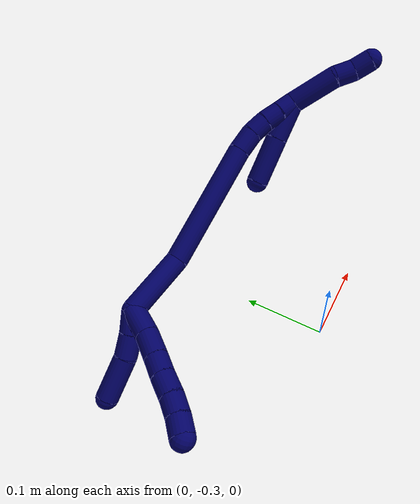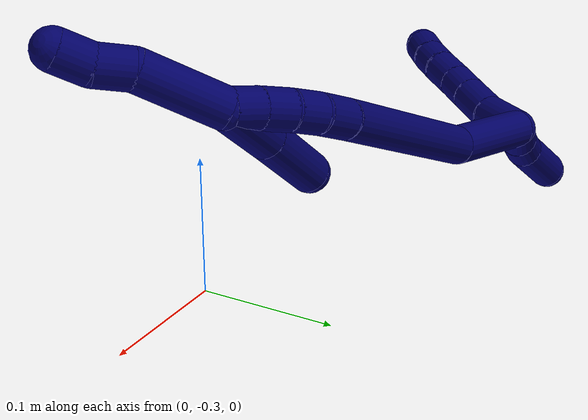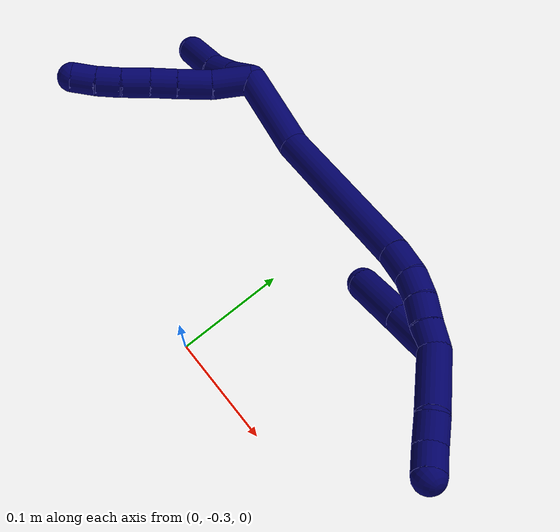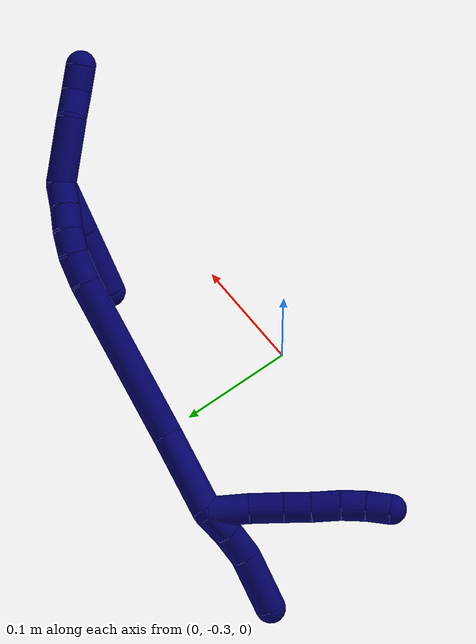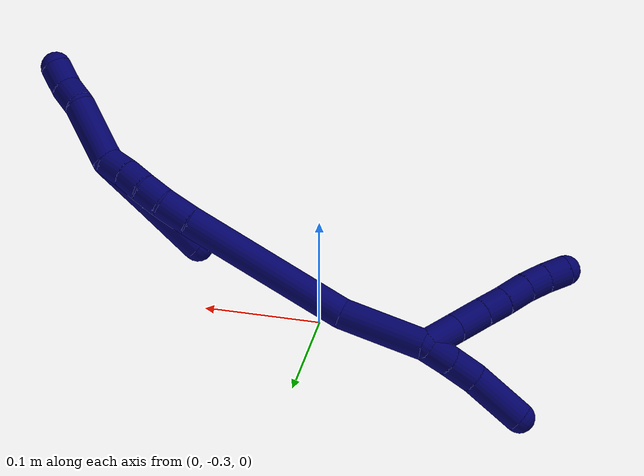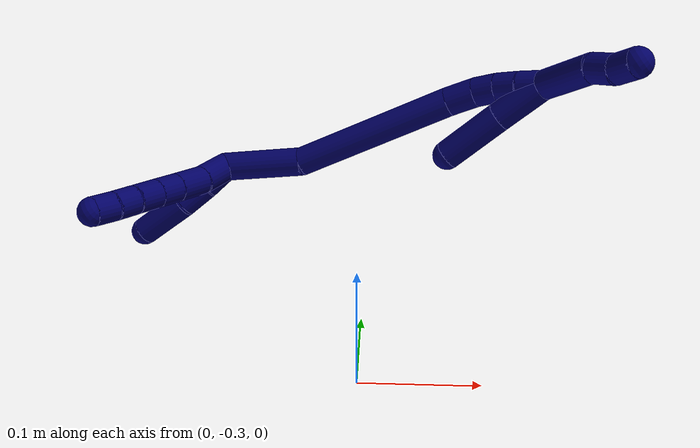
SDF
<sdf version="1.7">
 <world name="default">
  <model name="7">
   <static>0</static>
   <link name="7">
    <collision name="collision-cylinder-e_1_2_8">
     <pose>0.001225 -0.015391 -0.006543 1.97274 0.073114 0.110462</pose>
     <geometry><cylinder><radius>0.0125</radius><length>0.033538</length></cylinder></geometry>
     <surface>
      <friction><ode><mu>1.16</mu><mu2>1.16</mu2><slip1>0</slip1><slip2>0</slip2></ode></friction>
      <contact><ode><kp>1e+06</kp><kd>1</kd><max_vel>0</max_vel><min_depth>0.001</min_depth></ode></contact>
     </surface>
    </collision>
    <visual name="visual-cylinder-e_1_2_8">
     <pose>0.001225 -0.015391 -0.006543 1.97274 0.073114 0.110462</pose>
     <geometry><cylinder><radius>0.0125</radius><length>0.033538</length></cylinder></geometry>
     <material><ambient>0.003922 0 0.403922 1</ambient></material>
    </visual>
    <collision name="collision-cylinder-e_2_8_9">
     <pose>0.001095 -0.044173 -0.018859 1.97788 -0.09266 -0.140726</pose>
     <geometry><cylinder><radius>0.0125</radius><length>0.02929</length></cylinder></geometry>
     <surface>
      <friction><ode><mu>1.16</mu><mu2>1.16</mu2><slip1>0</slip1><slip2>0</slip2></ode></friction>
      <contact><ode><kp>1e+06</kp><kd>1</kd><max_vel>0</max_vel><min_depth>0.001</min_depth></ode></contact>
     </surface>
    </collision>
    <visual name="visual-cylinder-e_2_8_9">
     <pose>0.001095 -0.044173 -0.018859 1.97788 -0.09266 -0.140726</pose>
     <geometry><cylinder><radius>0.0125</radius><length>0.02929</length></cylinder></geometry>
     <material><ambient>0.003922 0 0.403922 1</ambient></material>
    </visual>
    <collision name="collision-cylinder-e_3_9_10">
     <pose>-0.001444 -0.067711 -0.029175 1.99172 -0.106094 -0.163525</pose>
     <geometry><cylinder><radius>0.0125</radius><length>0.022363</length></cylinder></geometry>
     <surface>
      <friction><ode><mu>1.16</mu><mu2>1.16</mu2><slip1>0</slip1><slip2>0</slip2></ode></friction>
      <contact><ode><kp>1e+06</kp><kd>1</kd><max_vel>0</max_vel><min_depth>0.001</min_depth></ode></contact>
     </surface>
    </collision>
    <visual name="visual-cylinder-e_3_9_10">
     <pose>-0.001444 -0.067711 -0.029175 1.99172 -0.106094 -0.163525</pose>
     <geometry><cylinder><radius>0.0125</radius><length>0.022363</length></cylinder></geometry>
     <material><ambient>0.003922 0 0.403922 1</ambient></material>
    </visual>
    <collision name="collision-cylinder-e_4_10_11">
     <pose>-0.003649 -0.08895 -0.03808 1.94547 -0.085403 -0.125267</pose>
     <geometry><cylinder><radius>0.0125</radius><length>0.023923</length></cylinder></geometry>
     <surface>
      <friction><ode><mu>1.16</mu><mu2>1.16</mu2><slip1>0</slip1><slip2>0</slip2></ode></friction>
      <contact><ode><kp>1e+06</kp><kd>1</kd><max_vel>0</max_vel><min_depth>0.001</min_depth></ode></contact>
     </surface>
    </collision>
    <visual name="visual-cylinder-e_4_10_11">
     <pose>-0.003649 -0.08895 -0.03808 1.94547 -0.085403 -0.125267</pose>
     <geometry><cylinder><radius>0.0125</radius><length>0.023923</length></cylinder></geometry>
     <material><ambient>0.003922 0 0.403922 1</ambient></material>
    </visual>
    <collision name="collision-cylinder-e_5_11_12">
     <pose>-0.00579 -0.109166 -0.047048 2.03835 -0.109281 -0.177306</pose>
     <geometry><cylinder><radius>0.0125</radius><length>0.020566</length></cylinder></geometry>
     <surface>
      <friction><ode><mu>1.16</mu><mu2>1.16</mu2><slip1>0</slip1><slip2>0</slip2></ode></friction>
      <contact><ode><kp>1e+06</kp><kd>1</kd><max_vel>0</max_vel><min_depth>0.001</min_depth></ode></contact>
     </surface>
    </collision>
    <visual name="visual-cylinder-e_5_11_12">
     <pose>-0.00579 -0.109166 -0.047048 2.03835 -0.109281 -0.177306</pose>
     <geometry><cylinder><radius>0.0125</radius><length>0.020566</length></cylinder></geometry>
     <material><ambient>0.003922 0 0.403922 1</ambient></material>
    </visual>
    <collision name="collision-cylinder-e_6_12_6">
     <pose>-0.008682 -0.126817 -0.056889 2.12128 -0.175152 -0.311278</pose>
     <geometry><cylinder><radius>0.0125</radius><length>0.020321</length></cylinder></geometry>
     <surface>
      <friction><ode><mu>1.16</mu><mu2>1.16</mu2><slip1>0</slip1><slip2>0</slip2></ode></friction>
      <contact><ode><kp>1e+06</kp><kd>1</kd><max_vel>0</max_vel><min_depth>0.001</min_depth></ode></contact>
     </surface>
    </collision>
    <visual name="visual-cylinder-e_6_12_6">
     <pose>-0.008682 -0.126817 -0.056889 2.12128 -0.175152 -0.311278</pose>
     <geometry><cylinder><radius>0.0125</radius><length>0.020321</length></cylinder></geometry>
     <material><ambient>0.003922 0 0.403922 1</ambient></material>
    </visual>
    <collision name="collision-cylinder-e_1_2_13">
     <pose>0.002087 -0.003026 -0.01183 2.89121 0.169298 1.18644</pose>
     <geometry><cylinder><radius>0.0125</radius><length>0.024776</length></cylinder></geometry>
     <surface>
      <friction><ode><mu>1.16</mu><mu2>1.16</mu2><slip1>0</slip1><slip2>0</slip2></ode></friction>
      <contact><ode><kp>1e+06</kp><kd>1</kd><max_vel>0</max_vel><min_depth>0.001</min_depth></ode></contact>
     </surface>
    </collision>
    <visual name="visual-cylinder-e_1_2_13">
     <pose>0.002087 -0.003026 -0.01183 2.89121 0.169298 1.18644</pose>
     <geometry><cylinder><radius>0.0125</radius><length>0.024776</length></cylinder></geometry>
     <material><ambient>0.003922 0 0.403922 1</ambient></material>
    </visual>
    <collision name="collision-cylinder-e_2_13_14">
     <pose>0.005345 -0.008099 -0.036567 2.98423 0.089311 1.03123</pose>
     <geometry><cylinder><radius>0.0125</radius><length>0.026241</length></cylinder></geometry>
     <surface>
      <friction><ode><mu>1.16</mu><mu2>1.16</mu2><slip1>0</slip1><slip2>0</slip2></ode></friction>
      <contact><ode><kp>1e+06</kp><kd>1</kd><max_vel>0</max_vel><min_depth>0.001</min_depth></ode></contact>
     </surface>
    </collision>
    <visual name="visual-cylinder-e_2_13_14">
     <pose>0.005345 -0.008099 -0.036567 2.98423 0.089311 1.03123</pose>
     <geometry><cylinder><radius>0.0125</radius><length>0.026241</length></cylinder></geometry>
     <material><ambient>0.003922 0 0.403922 1</ambient></material>
    </visual>
    <collision name="collision-cylinder-e_3_14_5">
     <pose>0.006475 -0.009461 -0.073955 -3.11356 -0.001617 0.115224</pose>
     <geometry><cylinder><radius>0.0125</radius><length>0.048983</length></cylinder></geometry>
     <surface>
      <friction><ode><mu>1.16</mu><mu2>1.16</mu2><slip1>0</slip1><slip2>0</slip2></ode></friction>
      <contact><ode><kp>1e+06</kp><kd>1</kd><max_vel>0</max_vel><min_depth>0.001</min_depth></ode></contact>
     </surface>
    </collision>
    <visual name="visual-cylinder-e_3_14_5">
     <pose>0.006475 -0.009461 -0.073955 -3.11356 -0.001617 0.115224</pose>
     <geometry><cylinder><radius>0.0125</radius><length>0.048983</length></cylinder></geometry>
     <material><ambient>0.003922 0 0.403922 1</ambient></material>
    </visual>
    <collision name="collision-cylinder-e_1_2_15">
     <pose>0.017526 0.002189 0.031303 -0.069825 0.509354 -0.018184</pose>
     <geometry><cylinder><radius>0.0125</radius><length>0.071884</length></cylinder></geometry>
     <surface>
      <friction><ode><mu>1.16</mu><mu2>1.16</mu2><slip1>0</slip1><slip2>0</slip2></ode></friction>
      <contact><ode><kp>1e+06</kp><kd>1</kd><max_vel>0</max_vel><min_depth>0.001</min_depth></ode></contact>
     </surface>
    </collision>
    <visual name="visual-cylinder-e_1_2_15">
     <pose>0.017526 0.002189 0.031303 -0.069825 0.509354 -0.018184</pose>
     <geometry><cylinder><radius>0.0125</radius><length>0.071884</length></cylinder></geometry>
     <material><ambient>0.003922 0 0.403922 1</ambient></material>
    </visual>
    <collision name="collision-cylinder-e_2_15_16">
     <pose>0.049673 0.00735 0.132061 -0.042761 0.207302 -0.004449</pose>
     <geometry><cylinder><radius>0.0125</radius><length>0.142078</length></cylinder></geometry>
     <surface>
      <friction><ode><mu>1.16</mu><mu2>1.16</mu2><slip1>0</slip1><slip2>0</slip2></ode></friction>
      <contact><ode><kp>1e+06</kp><kd>1</kd><max_vel>0</max_vel><min_depth>0.001</min_depth></ode></contact>
     </surface>
    </collision>
    <visual name="visual-cylinder-e_2_15_16">
     <pose>0.049673 0.00735 0.132061 -0.042761 0.207302 -0.004449</pose>
     <geometry><cylinder><radius>0.0125</radius><length>0.142078</length></cylinder></geometry>
     <material><ambient>0.003922 0 0.403922 1</ambient></material>
    </visual>
    <collision name="collision-cylinder-e_3_16_17">
     <pose>0.067622 0.009699 0.213768 0.050823 0.264881 0.006772</pose>
     <geometry><cylinder><radius>0.0125</radius><length>0.025425</length></cylinder></geometry>
     <surface>
      <friction><ode><mu>1.16</mu><mu2>1.16</mu2><slip1>0</slip1><slip2>0</slip2></ode></friction>
      <contact><ode><kp>1e+06</kp><kd>1</kd><max_vel>0</max_vel><min_depth>0.001</min_depth></ode></contact>
     </surface>
    </collision>
    <visual name="visual-cylinder-e_3_16_17">
     <pose>0.067622 0.009699 0.213768 0.050823 0.264881 0.006772</pose>
     <geometry><cylinder><radius>0.0125</radius><length>0.025425</length></cylinder></geometry>
     <material><ambient>0.003922 0 0.403922 1</ambient></material>
    </visual>
    <collision name="collision-cylinder-e_4_17_18">
     <pose>0.074811 0.007012 0.235197 0.221178 0.389543 0.043804</pose>
     <geometry><cylinder><radius>0.0125</radius><length>0.020331</length></cylinder></geometry>
     <surface>
      <friction><ode><mu>1.16</mu><mu2>1.16</mu2><slip1>0</slip1><slip2>0</slip2></ode></friction>
      <contact><ode><kp>1e+06</kp><kd>1</kd><max_vel>0</max_vel><min_depth>0.001</min_depth></ode></contact>
     </surface>
    </collision>
    <visual name="visual-cylinder-e_4_17_18">
     <pose>0.074811 0.007012 0.235197 0.221178 0.389543 0.043804</pose>
     <geometry><cylinder><radius>0.0125</radius><length>0.020331</length></cylinder></geometry>
     <material><ambient>0.003922 0 0.403922 1</ambient></material>
    </visual>
    <collision name="collision-cylinder-e_5_18_19">
     <pose>0.083427 0.00197 0.25275 0.341686 0.491101 0.086418</pose>
     <geometry><cylinder><radius>0.0125</radius><length>0.020167</length></cylinder></geometry>
     <surface>
      <friction><ode><mu>1.16</mu><mu2>1.16</mu2><slip1>0</slip1><slip2>0</slip2></ode></friction>
      <contact><ode><kp>1e+06</kp><kd>1</kd><max_vel>0</max_vel><min_depth>0.001</min_depth></ode></contact>
     </surface>
    </collision>
    <visual name="visual-cylinder-e_5_18_19">
     <pose>0.083427 0.00197 0.25275 0.341686 0.491101 0.086418</pose>
     <geometry><cylinder><radius>0.0125</radius><length>0.020167</length></cylinder></geometry>
     <material><ambient>0.003922 0 0.403922 1</ambient></material>
    </visual>
    <collision name="collision-cylinder-e_6_19_1">
     <pose>0.093338 -0.003232 0.269471 0.260337 0.538314 0.072191</pose>
     <geometry><cylinder><radius>0.0125</radius><length>0.020114</length></cylinder></geometry>
     <surface>
      <friction><ode><mu>1.16</mu><mu2>1.16</mu2><slip1>0</slip1><slip2>0</slip2></ode></friction>
      <contact><ode><kp>1e+06</kp><kd>1</kd><max_vel>0</max_vel><min_depth>0.001</min_depth></ode></contact>
     </surface>
    </collision>
    <visual name="visual-cylinder-e_6_19_1">
     <pose>0.093338 -0.003232 0.269471 0.260337 0.538314 0.072191</pose>
     <geometry><cylinder><radius>0.0125</radius><length>0.020114</length></cylinder></geometry>
     <material><ambient>0.003922 0 0.403922 1</ambient></material>
    </visual>
    <collision name="collision-cylinder-e_1_1_20">
     <pose>0.099186 -0.004366 0.255432 -3.093 0.030856 -1.13135</pose>
     <geometry><cylinder><radius>0.0125</radius><length>0.04484</length></cylinder></geometry>
     <surface>
      <friction><ode><mu>1.16</mu><mu2>1.16</mu2><slip1>0</slip1><slip2>0</slip2></ode></friction>
      <contact><ode><kp>1e+06</kp><kd>1</kd><max_vel>0</max_vel><min_depth>0.001</min_depth></ode></contact>
     </surface>
    </collision>
    <visual name="visual-cylinder-e_1_1_20">
     <pose>0.099186 -0.004366 0.255432 -3.093 0.030856 -1.13135</pose>
     <geometry><cylinder><radius>0.0125</radius><length>0.04484</length></cylinder></geometry>
     <material><ambient>0.003922 0 0.403922 1</ambient></material>
    </visual>
    <collision name="collision-cylinder-e_2_20_4">
     <pose>0.101051 -0.00187 0.20553 -3.09047 0.042547 -1.38809</pose>
     <geometry><cylinder><radius>0.0125</radius><length>0.05516</length></cylinder></geometry>
     <surface>
      <friction><ode><mu>1.16</mu><mu2>1.16</mu2><slip1>0</slip1><slip2>0</slip2></ode></friction>
      <contact><ode><kp>1e+06</kp><kd>1</kd><max_vel>0</max_vel><min_depth>0.001</min_depth></ode></contact>
     </surface>
    </collision>
    <visual name="visual-cylinder-e_2_20_4">
     <pose>0.101051 -0.00187 0.20553 -3.09047 0.042547 -1.38809</pose>
     <geometry><cylinder><radius>0.0125</radius><length>0.05516</length></cylinder></geometry>
     <material><ambient>0.003922 0 0.403922 1</ambient></material>
    </visual>
    <collision name="collision-cylinder-e_1_1_21">
     <pose>0.104762 -0.021405 0.299724 0.629285 0.227274 0.074253</pose>
     <geometry><cylinder><radius>0.0125</radius><length>0.055629</length></cylinder></geometry>
     <surface>
      <friction><ode><mu>1.16</mu><mu2>1.16</mu2><slip1>0</slip1><slip2>0</slip2></ode></friction>
      <contact><ode><kp>1e+06</kp><kd>1</kd><max_vel>0</max_vel><min_depth>0.001</min_depth></ode></contact>
     </surface>
    </collision>
    <visual name="visual-cylinder-e_1_1_21">
     <pose>0.104762 -0.021405 0.299724 0.629285 0.227274 0.074253</pose>
     <geometry><cylinder><radius>0.0125</radius><length>0.055629</length></cylinder></geometry>
     <material><ambient>0.003922 0 0.403922 1</ambient></material>
    </visual>
    <collision name="collision-cylinder-e_2_21_22">
     <pose>0.116789 -0.043287 0.329235 0.66264 0.538359 0.189236</pose>
     <geometry><cylinder><radius>0.0125</radius><length>0.022467</length></cylinder></geometry>
     <surface>
      <friction><ode><mu>1.16</mu><mu2>1.16</mu2><slip1>0</slip1><slip2>0</slip2></ode></friction>
      <contact><ode><kp>1e+06</kp><kd>1</kd><max_vel>0</max_vel><min_depth>0.001</min_depth></ode></contact>
     </surface>
    </collision>
    <visual name="visual-cylinder-e_2_21_22">
     <pose>0.116789 -0.043287 0.329235 0.66264 0.538359 0.189236</pose>
     <geometry><cylinder><radius>0.0125</radius><length>0.022467</length></cylinder></geometry>
     <material><ambient>0.003922 0 0.403922 1</ambient></material>
    </visual>
    <collision name="collision-cylinder-e_3_22_3">
     <pose>0.125208 -0.055508 0.345403 0.633231 0.245327 0.08074</pose>
     <geometry><cylinder><radius>0.0125</radius><length>0.021904</length></cylinder></geometry>
     <surface>
      <friction><ode><mu>1.16</mu><mu2>1.16</mu2><slip1>0</slip1><slip2>0</slip2></ode></friction>
      <contact><ode><kp>1e+06</kp><kd>1</kd><max_vel>0</max_vel><min_depth>0.001</min_depth></ode></contact>
     </surface>
    </collision>
    <visual name="visual-cylinder-e_3_22_3">
     <pose>0.125208 -0.055508 0.345403 0.633231 0.245327 0.08074</pose>
     <geometry><cylinder><radius>0.0125</radius><length>0.021904</length></cylinder></geometry>
     <material><ambient>0.003922 0 0.403922 1</ambient></material>
    </visual>
    <collision name="collision-sphere-3">
     <pose>0.127868 -0.061794 0.353967 0 -0 0</pose>
     <geometry><sphere><radius>0.0125</radius></sphere></geometry>
     <surface>
      <friction><ode><mu>1.16</mu><mu2>1.16</mu2><slip1>0</slip1><slip2>0</slip2></ode></friction>
      <contact><ode><kp>1e+06</kp><kd>1</kd><max_vel>0</max_vel><min_depth>0.001</min_depth></ode></contact>
     </surface>
    </collision>
    <visual name="visual-sphere-3">
     <pose>0.127868 -0.061794 0.353967 0 -0 0</pose>
     <geometry><sphere><radius>0.0125</radius></sphere></geometry>
     <material><ambient>0.003922 0 0.403922 1</ambient></material>
    </visual>
    <collision name="collision-sphere-22">
     <pose>0.122548 -0.049221 0.336839 0 -0 0</pose>
     <geometry><sphere><radius>0.0125</radius></sphere></geometry>
     <surface>
      <friction><ode><mu>1.16</mu><mu2>1.16</mu2><slip1>0</slip1><slip2>0</slip2></ode></friction>
      <contact><ode><kp>1e+06</kp><kd>1</kd><max_vel>0</max_vel><min_depth>0.001</min_depth></ode></contact>
     </surface>
    </collision>
    <visual name="visual-sphere-22">
     <pose>0.122548 -0.049221 0.336839 0 -0 0</pose>
     <geometry><sphere><radius>0.0125</radius></sphere></geometry>
     <material><ambient>0.003922 0 0.403922 1</ambient></material>
    </visual>
    <collision name="collision-sphere-21">
     <pose>0.111029 -0.037354 0.321632 0 -0 0</pose>
     <geometry><sphere><radius>0.0125</radius></sphere></geometry>
     <surface>
      <friction><ode><mu>1.16</mu><mu2>1.16</mu2><slip1>0</slip1><slip2>0</slip2></ode></friction>
      <contact><ode><kp>1e+06</kp><kd>1</kd><max_vel>0</max_vel><min_depth>0.001</min_depth></ode></contact>
     </surface>
    </collision>
    <visual name="visual-sphere-21">
     <pose>0.111029 -0.037354 0.321632 0 -0 0</pose>
     <geometry><sphere><radius>0.0125</radius></sphere></geometry>
     <material><ambient>0.003922 0 0.403922 1</ambient></material>
    </visual>
    <collision name="collision-sphere-4">
     <pose>0.102224 -0.000461 0.178011 0 -0 0</pose>
     <geometry><sphere><radius>0.0125</radius></sphere></geometry>
     <surface>
      <friction><ode><mu>1.16</mu><mu2>1.16</mu2><slip1>0</slip1><slip2>0</slip2></ode></friction>
      <contact><ode><kp>1e+06</kp><kd>1</kd><max_vel>0</max_vel><min_depth>0.001</min_depth></ode></contact>
     </surface>
    </collision>
    <visual name="visual-sphere-4">
     <pose>0.102224 -0.000461 0.178011 0 -0 0</pose>
     <geometry><sphere><radius>0.0125</radius></sphere></geometry>
     <material><ambient>0.003922 0 0.403922 1</ambient></material>
    </visual>
    <collision name="collision-sphere-20">
     <pose>0.099878 -0.003278 0.23305 0 -0 0</pose>
     <geometry><sphere><radius>0.0125</radius></sphere></geometry>
     <surface>
      <friction><ode><mu>1.16</mu><mu2>1.16</mu2><slip1>0</slip1><slip2>0</slip2></ode></friction>
      <contact><ode><kp>1e+06</kp><kd>1</kd><max_vel>0</max_vel><min_depth>0.001</min_depth></ode></contact>
     </surface>
    </collision>
    <visual name="visual-sphere-20">
     <pose>0.099878 -0.003278 0.23305 0 -0 0</pose>
     <geometry><sphere><radius>0.0125</radius></sphere></geometry>
     <material><ambient>0.003922 0 0.403922 1</ambient></material>
    </visual>
    <collision name="collision-sphere-12">
     <pose>-0.006912 -0.11829 -0.051655 0 -0 0</pose>
     <geometry><sphere><radius>0.0125</radius></sphere></geometry>
     <surface>
      <friction><ode><mu>1.16</mu><mu2>1.16</mu2><slip1>0</slip1><slip2>0</slip2></ode></friction>
      <contact><ode><kp>1e+06</kp><kd>1</kd><max_vel>0</max_vel><min_depth>0.001</min_depth></ode></contact>
     </surface>
    </collision>
    <visual name="visual-sphere-12">
     <pose>-0.006912 -0.11829 -0.051655 0 -0 0</pose>
     <geometry><sphere><radius>0.0125</radius></sphere></geometry>
     <material><ambient>0.003922 0 0.403922 1</ambient></material>
    </visual>
    <collision name="collision-sphere-11">
     <pose>-0.004669 -0.100041 -0.042442 0 -0 0</pose>
     <geometry><sphere><radius>0.0125</radius></sphere></geometry>
     <surface>
      <friction><ode><mu>1.16</mu><mu2>1.16</mu2><slip1>0</slip1><slip2>0</slip2></ode></friction>
      <contact><ode><kp>1e+06</kp><kd>1</kd><max_vel>0</max_vel><min_depth>0.001</min_depth></ode></contact>
     </surface>
    </collision>
    <visual name="visual-sphere-11">
     <pose>-0.004669 -0.100041 -0.042442 0 -0 0</pose>
     <geometry><sphere><radius>0.0125</radius></sphere></geometry>
     <material><ambient>0.003922 0 0.403922 1</ambient></material>
    </visual>
    <collision name="collision-sphere-10">
     <pose>-0.002628 -0.077859 -0.033718 0 -0 0</pose>
     <geometry><sphere><radius>0.0125</radius></sphere></geometry>
     <surface>
      <friction><ode><mu>1.16</mu><mu2>1.16</mu2><slip1>0</slip1><slip2>0</slip2></ode></friction>
      <contact><ode><kp>1e+06</kp><kd>1</kd><max_vel>0</max_vel><min_depth>0.001</min_depth></ode></contact>
     </surface>
    </collision>
    <visual name="visual-sphere-10">
     <pose>-0.002628 -0.077859 -0.033718 0 -0 0</pose>
     <geometry><sphere><radius>0.0125</radius></sphere></geometry>
     <material><ambient>0.003922 0 0.403922 1</ambient></material>
    </visual>
    <collision name="collision-sphere-9">
     <pose>-0.00026 -0.057563 -0.024632 0 -0 0</pose>
     <geometry><sphere><radius>0.0125</radius></sphere></geometry>
     <surface>
      <friction><ode><mu>1.16</mu><mu2>1.16</mu2><slip1>0</slip1><slip2>0</slip2></ode></friction>
      <contact><ode><kp>1e+06</kp><kd>1</kd><max_vel>0</max_vel><min_depth>0.001</min_depth></ode></contact>
     </surface>
    </collision>
    <visual name="visual-sphere-9">
     <pose>-0.00026 -0.057563 -0.024632 0 -0 0</pose>
     <geometry><sphere><radius>0.0125</radius></sphere></geometry>
     <material><ambient>0.003922 0 0.403922 1</ambient></material>
    </visual>
    <collision name="collision-sphere-2">
     <geometry><sphere><radius>0.0125</radius></sphere></geometry>
     <surface>
      <friction><ode><mu>1.16</mu><mu2>1.16</mu2><slip1>0</slip1><slip2>0</slip2></ode></friction>
      <contact><ode><kp>1e+06</kp><kd>1</kd><max_vel>0</max_vel><min_depth>0.001</min_depth></ode></contact>
     </surface>
    </collision>
    <visual name="visual-sphere-2">
     <geometry><sphere><radius>0.0125</radius></sphere></geometry>
     <material><ambient>0.003922 0 0.403922 1</ambient></material>
    </visual>
    <collision name="collision-sphere-19">
     <pose>0.088182 -0.001009 0.261127 0 -0 0</pose>
     <geometry><sphere><radius>0.0125</radius></sphere></geometry>
     <surface>
      <friction><ode><mu>1.16</mu><mu2>1.16</mu2><slip1>0</slip1><slip2>0</slip2></ode></friction>
      <contact><ode><kp>1e+06</kp><kd>1</kd><max_vel>0</max_vel><min_depth>0.001</min_depth></ode></contact>
     </surface>
    </collision>
    <visual name="visual-sphere-19">
     <pose>0.088182 -0.001009 0.261127 0 -0 0</pose>
     <geometry><sphere><radius>0.0125</radius></sphere></geometry>
     <material><ambient>0.003922 0 0.403922 1</ambient></material>
    </visual>
    <collision name="collision-sphere-8">
     <pose>0.00245 -0.030783 -0.013085 0 -0 0</pose>
     <geometry><sphere><radius>0.0125</radius></sphere></geometry>
     <surface>
      <friction><ode><mu>1.16</mu><mu2>1.16</mu2><slip1>0</slip1><slip2>0</slip2></ode></friction>
      <contact><ode><kp>1e+06</kp><kd>1</kd><max_vel>0</max_vel><min_depth>0.001</min_depth></ode></contact>
     </surface>
    </collision>
    <visual name="visual-sphere-8">
     <pose>0.00245 -0.030783 -0.013085 0 -0 0</pose>
     <geometry><sphere><radius>0.0125</radius></sphere></geometry>
     <material><ambient>0.003922 0 0.403922 1</ambient></material>
    </visual>
    <collision name="collision-sphere-6">
     <pose>-0.010453 -0.135344 -0.062122 0 -0 0</pose>
     <geometry><sphere><radius>0.0125</radius></sphere></geometry>
     <surface>
      <friction><ode><mu>1.16</mu><mu2>1.16</mu2><slip1>0</slip1><slip2>0</slip2></ode></friction>
      <contact><ode><kp>1e+06</kp><kd>1</kd><max_vel>0</max_vel><min_depth>0.001</min_depth></ode></contact>
     </surface>
    </collision>
    <visual name="visual-sphere-6">
     <pose>-0.010453 -0.135344 -0.062122 0 -0 0</pose>
     <geometry><sphere><radius>0.0125</radius></sphere></geometry>
     <material><ambient>0.003922 0 0.403922 1</ambient></material>
    </visual>
    <collision name="collision-sphere-13">
     <pose>0.004175 -0.006051 -0.02366 0 -0 0</pose>
     <geometry><sphere><radius>0.0125</radius></sphere></geometry>
     <surface>
      <friction><ode><mu>1.16</mu><mu2>1.16</mu2><slip1>0</slip1><slip2>0</slip2></ode></friction>
      <contact><ode><kp>1e+06</kp><kd>1</kd><max_vel>0</max_vel><min_depth>0.001</min_depth></ode></contact>
     </surface>
    </collision>
    <visual name="visual-sphere-13">
     <pose>0.004175 -0.006051 -0.02366 0 -0 0</pose>
     <geometry><sphere><radius>0.0125</radius></sphere></geometry>
     <material><ambient>0.003922 0 0.403922 1</ambient></material>
    </visual>
    <collision name="collision-sphere-14">
     <pose>0.006515 -0.010147 -0.049474 0 -0 0</pose>
     <geometry><sphere><radius>0.0125</radius></sphere></geometry>
     <surface>
      <friction><ode><mu>1.16</mu><mu2>1.16</mu2><slip1>0</slip1><slip2>0</slip2></ode></friction>
      <contact><ode><kp>1e+06</kp><kd>1</kd><max_vel>0</max_vel><min_depth>0.001</min_depth></ode></contact>
     </surface>
    </collision>
    <visual name="visual-sphere-14">
     <pose>0.006515 -0.010147 -0.049474 0 -0 0</pose>
     <geometry><sphere><radius>0.0125</radius></sphere></geometry>
     <material><ambient>0.003922 0 0.403922 1</ambient></material>
    </visual>
    <collision name="collision-sphere-5">
     <pose>0.006436 -0.008774 -0.098437 0 -0 0</pose>
     <geometry><sphere><radius>0.0125</radius></sphere></geometry>
     <surface>
      <friction><ode><mu>1.16</mu><mu2>1.16</mu2><slip1>0</slip1><slip2>0</slip2></ode></friction>
      <contact><ode><kp>1e+06</kp><kd>1</kd><max_vel>0</max_vel><min_depth>0.001</min_depth></ode></contact>
     </surface>
    </collision>
    <visual name="visual-sphere-5">
     <pose>0.006436 -0.008774 -0.098437 0 -0 0</pose>
     <geometry><sphere><radius>0.0125</radius></sphere></geometry>
     <material><ambient>0.003922 0 0.403922 1</ambient></material>
    </visual>
    <collision name="collision-sphere-15">
     <pose>0.035052 0.004379 0.062606 0 -0 0</pose>
     <geometry><sphere><radius>0.0125</radius></sphere></geometry>
     <surface>
      <friction><ode><mu>1.16</mu><mu2>1.16</mu2><slip1>0</slip1><slip2>0</slip2></ode></friction>
      <contact><ode><kp>1e+06</kp><kd>1</kd><max_vel>0</max_vel><min_depth>0.001</min_depth></ode></contact>
     </surface>
    </collision>
    <visual name="visual-sphere-15">
     <pose>0.035052 0.004379 0.062606 0 -0 0</pose>
     <geometry><sphere><radius>0.0125</radius></sphere></geometry>
     <material><ambient>0.003922 0 0.403922 1</ambient></material>
    </visual>
    <collision name="collision-sphere-16">
     <pose>0.064294 0.010322 0.201515 0 -0 0</pose>
     <geometry><sphere><radius>0.0125</radius></sphere></geometry>
     <surface>
      <friction><ode><mu>1.16</mu><mu2>1.16</mu2><slip1>0</slip1><slip2>0</slip2></ode></friction>
      <contact><ode><kp>1e+06</kp><kd>1</kd><max_vel>0</max_vel><min_depth>0.001</min_depth></ode></contact>
     </surface>
    </collision>
    <visual name="visual-sphere-16">
     <pose>0.064294 0.010322 0.201515 0 -0 0</pose>
     <geometry><sphere><radius>0.0125</radius></sphere></geometry>
     <material><ambient>0.003922 0 0.403922 1</ambient></material>
    </visual>
    <collision name="collision-sphere-17">
     <pose>0.07095 0.009075 0.226022 0 -0 0</pose>
     <geometry><sphere><radius>0.0125</radius></sphere></geometry>
     <surface>
      <friction><ode><mu>1.16</mu><mu2>1.16</mu2><slip1>0</slip1><slip2>0</slip2></ode></friction>
      <contact><ode><kp>1e+06</kp><kd>1</kd><max_vel>0</max_vel><min_depth>0.001</min_depth></ode></contact>
     </surface>
    </collision>
    <visual name="visual-sphere-17">
     <pose>0.07095 0.009075 0.226022 0 -0 0</pose>
     <geometry><sphere><radius>0.0125</radius></sphere></geometry>
     <material><ambient>0.003922 0 0.403922 1</ambient></material>
    </visual>
    <collision name="collision-sphere-18">
     <pose>0.078672 0.004949 0.244372 0 -0 0</pose>
     <geometry><sphere><radius>0.0125</radius></sphere></geometry>
     <surface>
      <friction><ode><mu>1.16</mu><mu2>1.16</mu2><slip1>0</slip1><slip2>0</slip2></ode></friction>
      <contact><ode><kp>1e+06</kp><kd>1</kd><max_vel>0</max_vel><min_depth>0.001</min_depth></ode></contact>
     </surface>
    </collision>
    <visual name="visual-sphere-18">
     <pose>0.078672 0.004949 0.244372 0 -0 0</pose>
     <geometry><sphere><radius>0.0125</radius></sphere></geometry>
     <material><ambient>0.003922 0 0.403922 1</ambient></material>
    </visual>
    <collision name="collision-sphere-1">
     <pose>0.098495 -0.005455 0.277815 0 -0 0</pose>
     <geometry><sphere><radius>0.0125</radius></sphere></geometry>
     <surface>
      <friction><ode><mu>1.16</mu><mu2>1.16</mu2><slip1>0</slip1><slip2>0</slip2></ode></friction>
      <contact><ode><kp>1e+06</kp><kd>1</kd><max_vel>0</max_vel><min_depth>0.001</min_depth></ode></contact>
     </surface>
    </collision>
    <visual name="visual-sphere-1">
     <pose>0.098495 -0.005455 0.277815 0 -0 0</pose>
     <geometry><sphere><radius>0.0125</radius></sphere></geometry>
     <material><ambient>0.003922 0 0.403922 1</ambient></material>
    </visual>
    <inertial>
     <pose>0.048667 -0.017517 0.115787 0 -0 0</pose>
     <mass>0.75</mass>
     <inertia><ixx>0.00032</ixx><ixy>0</ixy><ixz>0</ixz><iyy>0.00024</iyy><iyz>0</iyz><izz>-5.5e-05</izz></inertia>
    </inertial>
   </link>
   <pose>-0.125144 -0.125483 0.111817 -0.445183 0.820892 -0.626267</pose>
  </model>
 </world>
</sdf>
